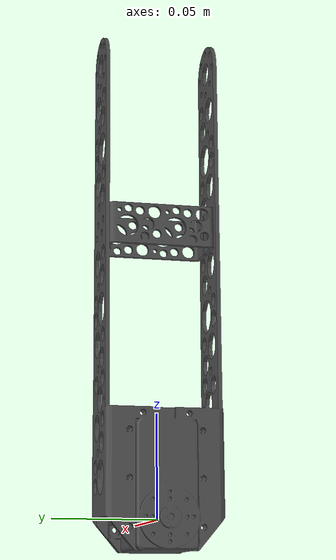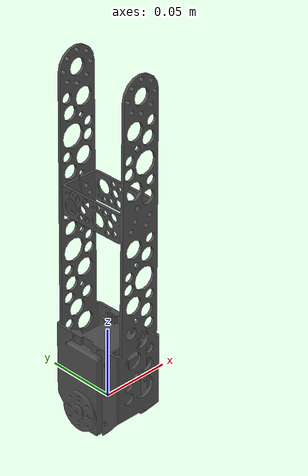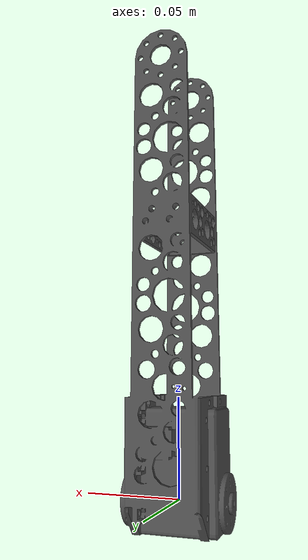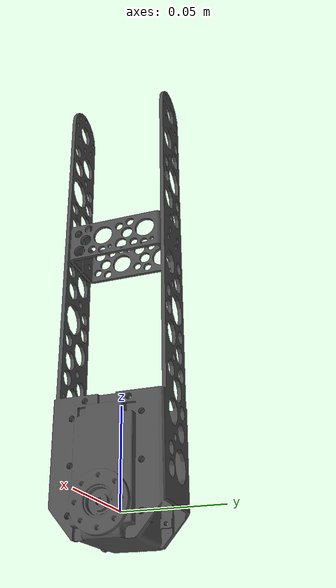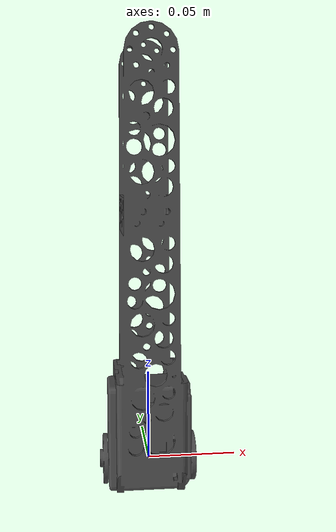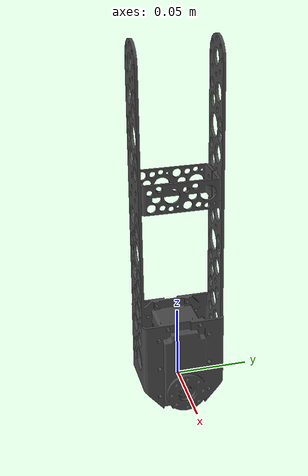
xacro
<robot name="elbow1_link"><link name="elbow1_link">
    <inertial>
      <origin rpy="0 0 0" xyz="3.38561240652013E-05 2.66604610292575E-06 0.0239321015909688" />
      <mass value="0.759959116000226" />
      <inertia ixx="0.0011156254663426" ixy="3.16193221175592E-07" ixz="2.89169705133133E-06" iyy="0.00114606034071406" iyz="-8.11914906919631E-08" izz="0.000237163435713384" />
    </inertial>
    <visual>
      <origin rpy="0 0 0" xyz="0 0 0" />
      <geometry>
        <mesh filename="package://robotican_description/komodo/meshes/elbow1_link.STL" />
      </geometry>
      <material name="">
        <color rgba="0.3 0.3 0.3 1" />
      </material>
    </visual>
    <collision>
      <origin rpy="0 0 0" xyz="0 0 0" />
      <geometry>
        <mesh filename="package://robotican_description/komodo/meshes/elbow1_link.STL" />
      </geometry>
    </collision>
  </link>
  </robot>
